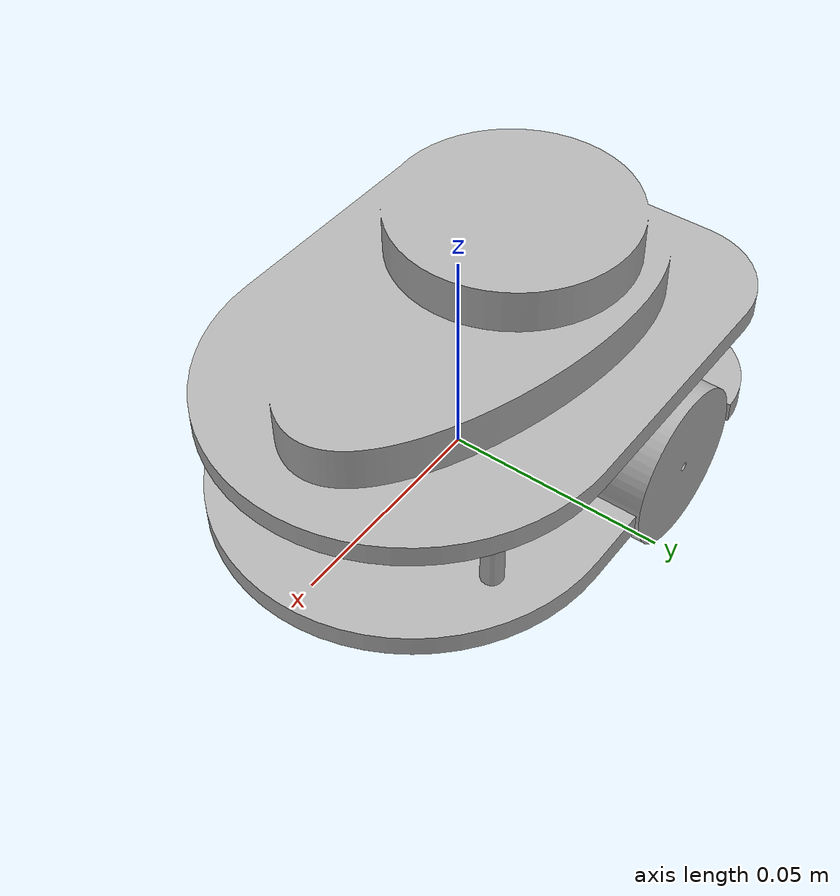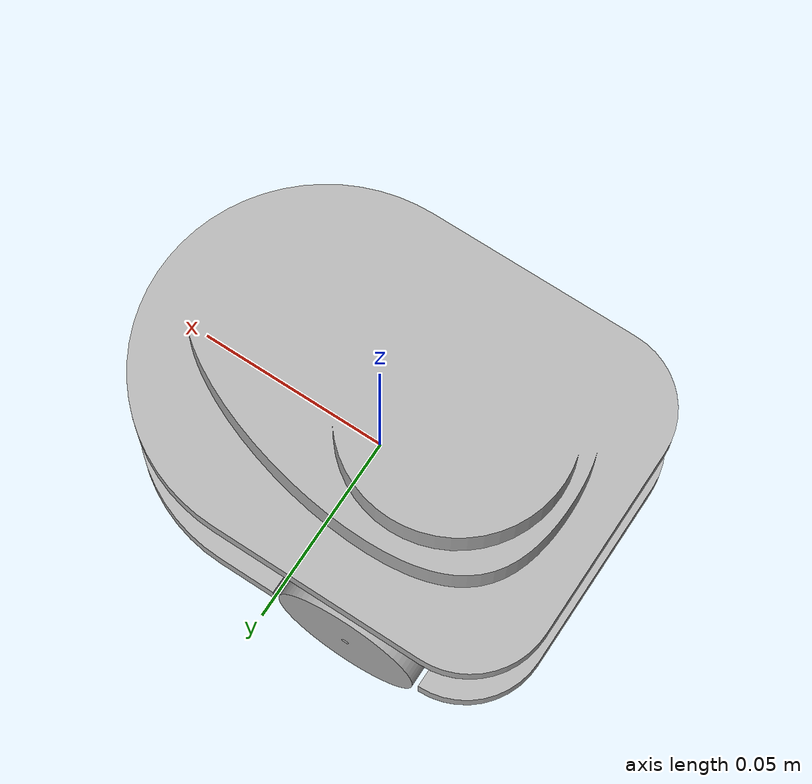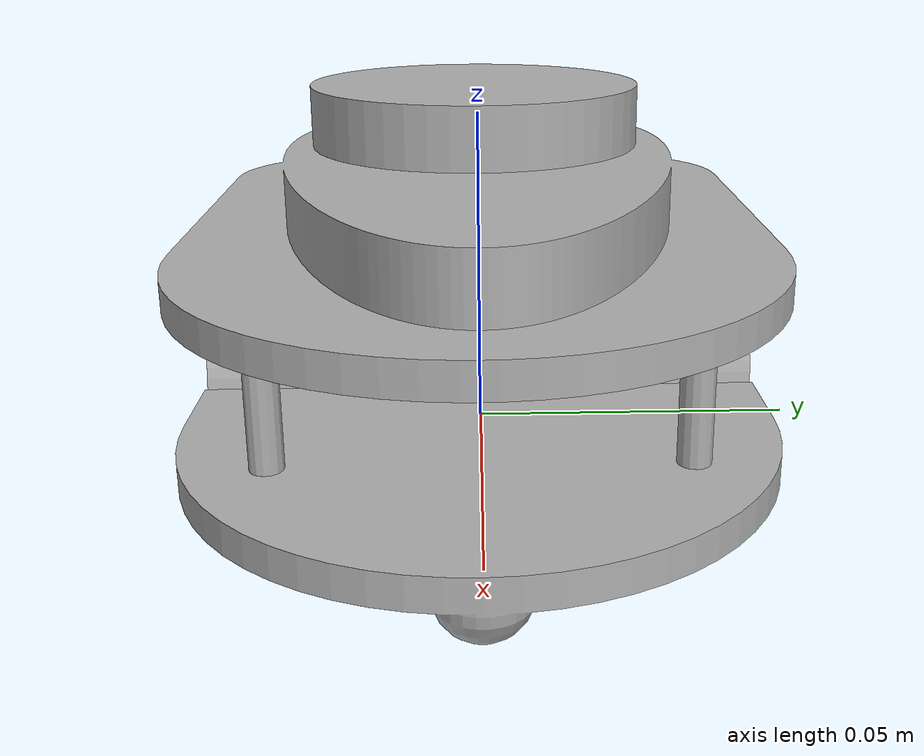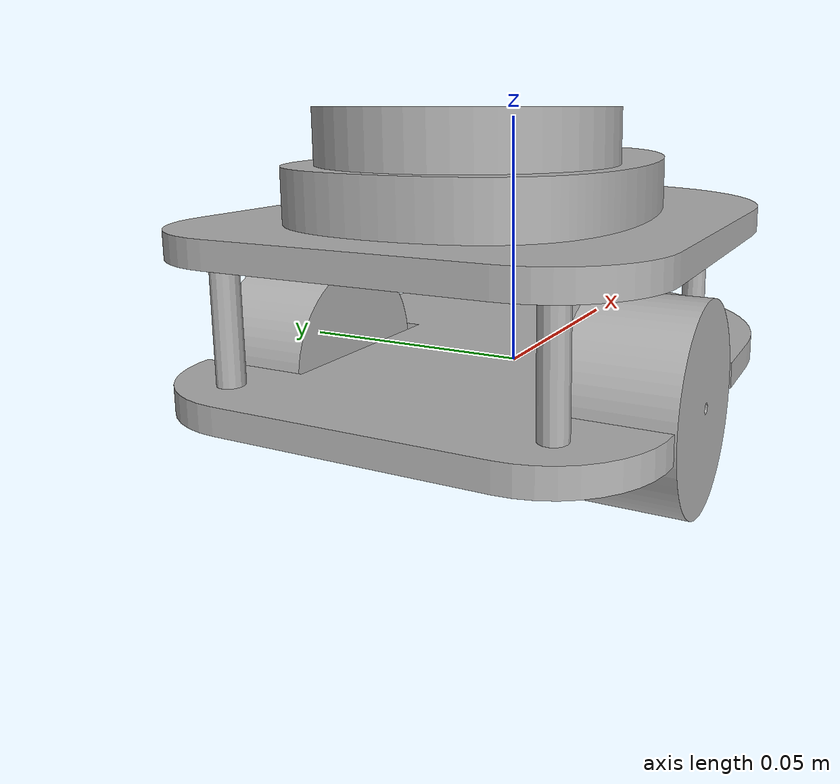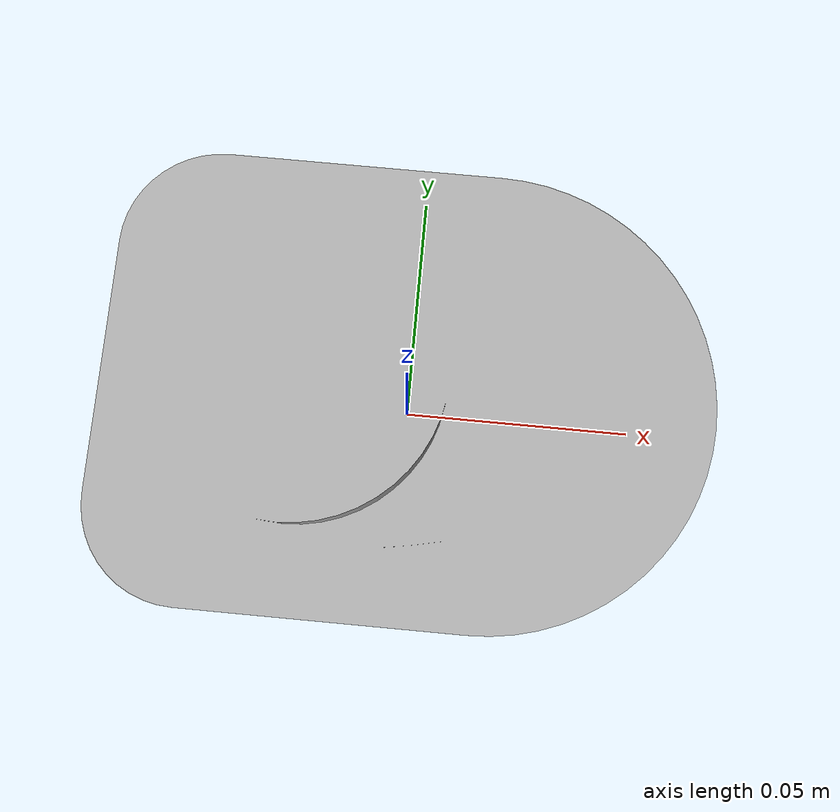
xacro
<?xml version="1.0" ?>
<robot name="vac" xmlns:xacro="http://www.ros.org/wiki/xacro">

<xacro:include filename="$(find vac_description)/urdf/materials.xacro" />
<xacro:include filename="$(find vac_description)/urdf/vac.trans" />
<xacro:include filename="$(find vac_description)/urdf/vac.gazebo" />
<link name="base_link">
  <inertial>
    <origin rpy="0 0 0" xyz="0.001915260398445279 0.0 0.018522278568649287"/>
    <mass value="0.11912938572725087"/>
    <inertia ixx="5.7e-05" ixy="-0.0" ixz="3e-06" iyy="0.000145" iyz="-0.0" izz="0.000198"/>
  </inertial>
  <visual>
    <origin rpy="0 0 0" xyz="0 0 0"/>
    <geometry>
      <mesh filename="package://vac_description/meshes/base_link.stl" scale="0.001 0.001 0.001"/>
    </geometry>
    <material name="silver"/>
  </visual>
  <collision>
    <origin rpy="0 0 0" xyz="0 0 0"/>
    <geometry>
      <mesh filename="package://vac_description/meshes/base_link.stl" scale="0.001 0.001 0.001"/>
    </geometry>
  </collision>
</link>

<link name="r_wheel_1">
  <inertial>
    <origin rpy="0 0 0" xyz="4.4703453092043155e-10 -0.009999999999999988 -5.5879349758480856e-11"/>
    <mass value="0.019940473970497814"/>
    <inertia ixx="2e-06" ixy="-0.0" ixz="0.0" iyy="3e-06" iyz="0.0" izz="2e-06"/>
  </inertial>
  <visual>
    <origin rpy="0 0 0" xyz="0.02 0.035 -0.0025"/>
    <geometry>
      <mesh filename="package://vac_description/meshes/r_wheel_1.stl" scale="0.001 0.001 0.001"/>
    </geometry>
    <material name="silver"/>
  </visual>
  <collision>
    <origin rpy="0 0 0" xyz="0.02 0.035 -0.0025"/>
    <geometry>
      <mesh filename="package://vac_description/meshes/r_wheel_1.stl" scale="0.001 0.001 0.001"/>
    </geometry>
  </collision>
</link>

<joint name="r_joint" type="continuous">
  <origin rpy="0 0 0" xyz="-0.02 -0.035 0.0025"/>
  <parent link="base_link"/>
  <child link="r_wheel_1"/>
  <axis xyz="0.0 1.0 0.0"/>
</joint>

<link name="l_wheel_1">
  <inertial>
    <origin rpy="0 0 0" xyz="4.4703453092043155e-10 0.009999999999999988 -5.5879349758480856e-11"/>
    <mass value="0.019940473970497814"/>
    <inertia ixx="2e-06" ixy="0.0" ixz="0.0" iyy="3e-06" iyz="-0.0" izz="2e-06"/>
  </inertial>
  <visual>
    <origin rpy="0 0 0" xyz="0.02 -0.035 -0.0025"/>
    <geometry>
      <mesh filename="package://vac_description/meshes/l_wheel_1.stl" scale="0.001 0.001 0.001"/>
    </geometry>
    <material name="silver"/>
  </visual>
  <collision>
    <origin rpy="0 0 0" xyz="0.02 -0.035 -0.0025"/>
    <geometry>
      <mesh filename="package://vac_description/meshes/l_wheel_1.stl" scale="0.001 0.001 0.001"/>
    </geometry>
  </collision>
</link>

<joint name="l_joint" type="continuous">
  <origin rpy="0 0 0" xyz="-0.02 0.035 0.0025"/>
  <parent link="base_link"/>
  <child link="l_wheel_1"/>
  <axis xyz="0.0 1.0 0.0"/>
</joint>

<link name="upper_plate_1">
  <inertial>
    <origin rpy="0 0 0" xyz="0.043126318713498396 0.029906839251503375 -0.0070827454590651"/>
    <mass value="0.1446581252670634"/>
    <inertia ixx="6.1e-05" ixy="-0.0" ixz="5e-06" iyy="0.000115" iyz="0.0" izz="0.000163"/>
  </inertial>
  <visual>
    <origin rpy="0 0 0" xyz="0.05 0.03 -0.059"/>
    <geometry>
      <mesh filename="package://vac_description/meshes/upper_plate_1.stl" scale="0.001 0.001 0.001"/>
    </geometry>
    <material name="silver"/>
  </visual>
  <collision>
    <origin rpy="0 0 0" xyz="0.05 0.03 -0.059"/>
    <geometry>
      <mesh filename="package://vac_description/meshes/upper_plate_1.stl" scale="0.001 0.001 0.001"/>
    </geometry>
  </collision>
</link>

<joint name="rb" type="fixed">
  <origin rpy="0 0 0" xyz="-0.05 -0.03 0.059"/>
  <parent link="base_link"/>
  <child link="upper_plate_1"/>
</joint>

</robot>

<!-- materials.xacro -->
<robot name="vac" xmlns:xacro="http://www.ros.org/wiki/xacro" >

<material name="silver">
  <color rgba="0.700 0.700 0.700 1.000"/>
</material>

</robot>

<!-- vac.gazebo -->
<robot name="vac" xmlns:xacro="http://www.ros.org/wiki/xacro" >

<xacro:property name="body_color" value="Gazebo/White" />
<xacro:property name="wheel_color" value="Gazebo/Black" />
<xacro:property name="plate_color" value="Gazebo/White" />

<gazebo>
  <plugin filename="libgazebo_ros_control.so" name="control"/>
</gazebo>
<gazebo reference="base_link">
  <material>${body_color}</material>
  <mu1>0.2</mu1>
  <mu2>0.2</mu2>
  <selfCollide>true</selfCollide>
  <gravity>true</gravity>
</gazebo>

<gazebo reference="r_wheel_1">
  <material>${wheel_color}</material>
  <mu1>50</mu1>
  <mu2>50</mu2>
  <selfCollide>true</selfCollide>
</gazebo>

<gazebo reference="l_wheel_1">
  <material>${wheel_color}</material>
  <mu1>50</mu1>
  <mu2>50</mu2>
  <selfCollide>true</selfCollide>
</gazebo>

<gazebo reference="upper_plate_1">
  <material>${plate_color}</material>
  <mu1>0.2</mu1>
  <mu2>0.2</mu2>
  <selfCollide>true</selfCollide>
</gazebo>

<gazebo>
  <plugin name="differential_drive_controller" filename="libgazebo_ros_diff_drive.so">

    <!-- Plugin update rate in Hz -->
    <updateRate>20</updateRate>

    <!-- Name of left joint, defaults to `left_joint` -->
    <leftJoint>l_joint</leftJoint>

    <!-- Name of right joint, defaults to `right_joint` -->
    <rightJoint>r_joint</rightJoint>

    <!-- The distance from the center of one wheel to the other, in meters, defaults to 0.34 m -->
    <wheelSeparation>0.07</wheelSeparation>

    <!-- Diameter of the wheels, in meters, defaults to 0.15 m -->
    <wheelDiameter>0.37</wheelDiameter>

    <!-- Wheel acceleration, in rad/s^2, defaults to 0.0 rad/s^2 -->
    <wheelAcceleration>1.0</wheelAcceleration>

    <!-- Maximum torque which the wheels can produce, in Nm, defaults to 5 Nm -->
    <wheelTorque>20</wheelTorque>

    <!-- Topic to receive geometry_msgs/Twist message commands, defaults to `cmd_vel` -->
    <commandTopic>cmd_vel</commandTopic>

    <!-- Topic to publish nav_msgs/Odometry messages, defaults to `odom` -->
    <odometryTopic>odom</odometryTopic>

    <!-- Odometry frame, defaults to `odom` -->
    <odometryFrame>odom</odometryFrame>

    <!-- Robot frame to calculate odometry from, defaults to `base_footprint` -->
    <robotBaseFrame>base_link</robotBaseFrame>

    <!-- Odometry source, 0 for ENCODER, 1 for WORLD, defaults to WORLD -->
    <odometrySource>1</odometrySource>

    <!-- Set to true to publish transforms for the wheel links, defaults to false -->
    <publishWheelTF>true</publishWheelTF>

    <!-- Set to true to publish transforms for the odometry, defaults to true -->
    <publishOdom>true</publishOdom>

    <!-- Set to true to publish sensor_msgs/JointState on /joint_states for the wheel joints, defaults to false -->
    <publishWheelJointState>true</publishWheelJointState>

    <!-- Set to true to swap right and left wheels, defaults to true -->
    <legacyMode>false</legacyMode>
  </plugin>
</gazebo>

</robot>
